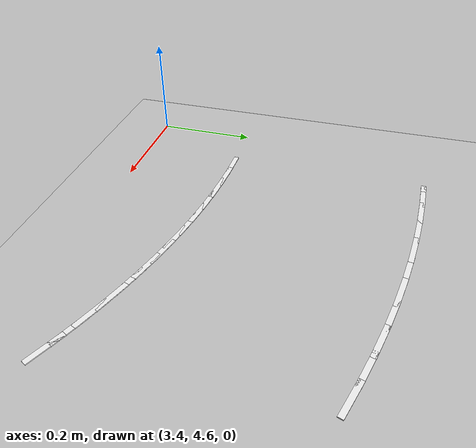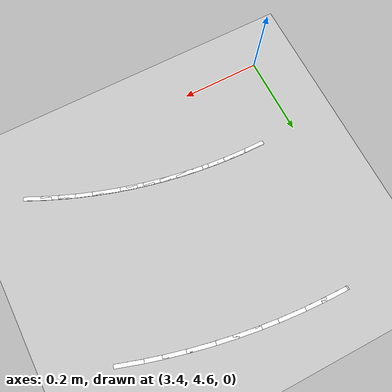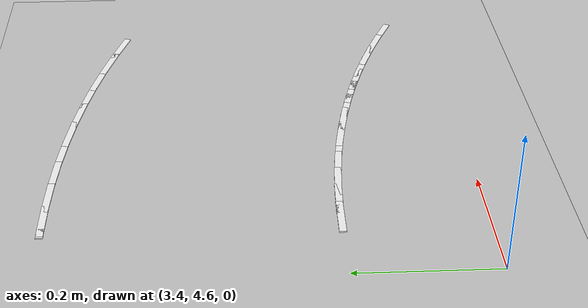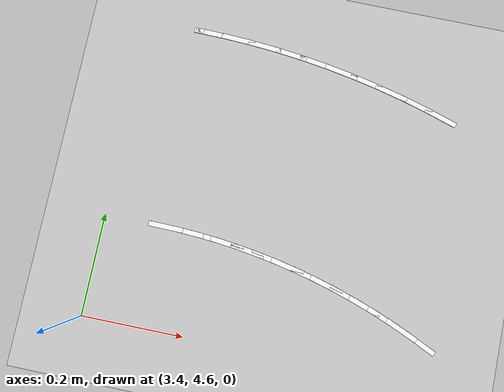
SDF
<sdf version="1.7">
 <world name="default">
  <model name="ground_plane">
   <static>1</static>
   <link name="link">
    <collision name="collision">
     <geometry><plane><normal>0 0 1</normal><size>100 100</size></plane></geometry>
     <surface>
      <contact><collide_bitmask>65535</collide_bitmask></contact>
      <friction><ode><mu>100</mu><mu2>50</mu2></ode></friction>
     </surface>
    </collision>
    <visual name="visual">
     <cast_shadows>0</cast_shadows>
     <geometry><plane><normal>0 0 1</normal><size>100 100</size></plane></geometry>
     <material>
      <script><uri>file://media/materials/scripts/gazebo.material</uri><name>Gazebo/Grey</name></script>
     </material>
    </visual>
   </link>
  </model>
  <model name="lane_line_left_185">
   <static>1</static>
   <link name="link">
    <pose>0 0 -0.004 0 -0 0</pose>
    <visual name="visual">
     <geometry><box><size>0.0681 0.01 0.01</size></box></geometry>
     <material><ambient>1 1 1 1</ambient><diffuse>1 1 1 1</diffuse></material>
    </visual>
    <collision name="collision"><geometry><box><size>0.0681 0.01 0.01</size></box></geometry></collision>
   </link>
   <pose>4.04512 4.67997 0 0 -0 2.70882</pose>
  </model>
  <model name="lane_line_left_186">
   <static>1</static>
   <link name="link">
    <pose>0 0 -0.004 0 -0 0</pose>
    <visual name="visual">
     <geometry><box><size>0.0681 0.01 0.01</size></box></geometry>
     <material><ambient>1 1 1 1</ambient><diffuse>1 1 1 1</diffuse></material>
    </visual>
    <collision name="collision"><geometry><box><size>0.0681 0.01 0.01</size></box></geometry></collision>
   </link>
   <pose>4.00702 4.69684 0 0 -0 2.74088</pose>
  </model>
  <model name="lane_line_left_187">
   <static>1</static>
   <link name="link">
    <pose>0 0 -0.004 0 -0 0</pose>
    <visual name="visual">
     <geometry><box><size>0.0681 0.01 0.01</size></box></geometry>
     <material><ambient>1 1 1 1</ambient><diffuse>1 1 1 1</diffuse></material>
    </visual>
    <collision name="collision"><geometry><box><size>0.0681 0.01 0.01</size></box></geometry></collision>
   </link>
   <pose>3.9684 4.71248 0 0 -0 2.77294</pose>
  </model>
  <model name="lane_line_left_188">
   <static>1</static>
   <link name="link">
    <pose>0 0 -0.004 0 -0 0</pose>
    <visual name="visual">
     <geometry><box><size>0.0681 0.01 0.01</size></box></geometry>
     <material><ambient>1 1 1 1</ambient><diffuse>1 1 1 1</diffuse></material>
    </visual>
    <collision name="collision"><geometry><box><size>0.0681 0.01 0.01</size></box></geometry></collision>
   </link>
   <pose>3.9293 4.72687 0 0 -0 2.80499</pose>
  </model>
  <model name="lane_line_left_189">
   <static>1</static>
   <link name="link">
    <pose>0 0 -0.004 0 -0 0</pose>
    <visual name="visual">
     <geometry><box><size>0.0681 0.01 0.01</size></box></geometry>
     <material><ambient>1 1 1 1</ambient><diffuse>1 1 1 1</diffuse></material>
    </visual>
    <collision name="collision"><geometry><box><size>0.0681 0.01 0.01</size></box></geometry></collision>
   </link>
   <pose>3.88976 4.74 0 0 -0 2.83705</pose>
  </model>
  <model name="lane_line_right_189">
   <static>1</static>
   <link name="link">
    <pose>0 0 -0.004 0 -0 0</pose>
    <visual name="visual">
     <geometry><box><size>0.0681 0.01 0.01</size></box></geometry>
     <material><ambient>1 1 1 1</ambient><diffuse>1 1 1 1</diffuse></material>
    </visual>
    <collision name="collision"><geometry><box><size>0.0681 0.01 0.01</size></box></geometry></collision>
   </link>
   <pose>4.0097 5.12159 0 0 -0 2.83705</pose>
  </model>
  <model name="lane_line_left_190">
   <static>1</static>
   <link name="link">
    <pose>0 0 -0.004 0 -0 0</pose>
    <visual name="visual">
     <geometry><box><size>0.0681 0.01 0.01</size></box></geometry>
     <material><ambient>1 1 1 1</ambient><diffuse>1 1 1 1</diffuse></material>
    </visual>
    <collision name="collision"><geometry><box><size>0.0681 0.01 0.01</size></box></geometry></collision>
   </link>
   <pose>3.84981 4.75185 0 0 -0 2.86911</pose>
  </model>
  <model name="lane_line_right_190">
   <static>1</static>
   <link name="link">
    <pose>0 0 -0.004 0 -0 0</pose>
    <visual name="visual">
     <geometry><box><size>0.0681 0.01 0.01</size></box></geometry>
     <material><ambient>1 1 1 1</ambient><diffuse>1 1 1 1</diffuse></material>
    </visual>
    <collision name="collision"><geometry><box><size>0.0681 0.01 0.01</size></box></geometry></collision>
   </link>
   <pose>3.95746 5.13709 0 0 -0 2.86911</pose>
  </model>
  <model name="lane_line_left_191">
   <static>1</static>
   <link name="link">
    <pose>0 0 -0.004 0 -0 0</pose>
    <visual name="visual">
     <geometry><box><size>0.0681 0.01 0.01</size></box></geometry>
     <material><ambient>1 1 1 1</ambient><diffuse>1 1 1 1</diffuse></material>
    </visual>
    <collision name="collision"><geometry><box><size>0.0681 0.01 0.01</size></box></geometry></collision>
   </link>
   <pose>3.80951 4.76242 0 0 -0 2.90116</pose>
  </model>
  <model name="lane_line_right_191">
   <static>1</static>
   <link name="link">
    <pose>0 0 -0.004 0 -0 0</pose>
    <visual name="visual">
     <geometry><box><size>0.0681 0.01 0.01</size></box></geometry>
     <material><ambient>1 1 1 1</ambient><diffuse>1 1 1 1</diffuse></material>
    </visual>
    <collision name="collision"><geometry><box><size>0.0681 0.01 0.01</size></box></geometry></collision>
   </link>
   <pose>3.90476 5.15091 0 0 -0 2.90116</pose>
  </model>
  <model name="lane_line_left_192">
   <static>1</static>
   <link name="link">
    <pose>0 0 -0.004 0 -0 0</pose>
    <visual name="visual">
     <geometry><box><size>0.0681 0.01 0.01</size></box></geometry>
     <material><ambient>1 1 1 1</ambient><diffuse>1 1 1 1</diffuse></material>
    </visual>
    <collision name="collision"><geometry><box><size>0.0681 0.01 0.01</size></box></geometry></collision>
   </link>
   <pose>3.76889 4.77169 0 0 -0 2.93322</pose>
  </model>
  <model name="lane_line_right_192">
   <static>1</static>
   <link name="link">
    <pose>0 0 -0.004 0 -0 0</pose>
    <visual name="visual">
     <geometry><box><size>0.0681 0.01 0.01</size></box></geometry>
     <material><ambient>1 1 1 1</ambient><diffuse>1 1 1 1</diffuse></material>
    </visual>
    <collision name="collision"><geometry><box><size>0.0681 0.01 0.01</size></box></geometry></collision>
   </link>
   <pose>3.85163 5.16304 0 0 -0 2.93322</pose>
  </model>
  <model name="lane_line_left_193">
   <static>1</static>
   <link name="link">
    <pose>0 0 -0.004 0 -0 0</pose>
    <visual name="visual">
     <geometry><box><size>0.0681 0.01 0.01</size></box></geometry>
     <material><ambient>1 1 1 1</ambient><diffuse>1 1 1 1</diffuse></material>
    </visual>
    <collision name="collision"><geometry><box><size>0.0681 0.01 0.01</size></box></geometry></collision>
   </link>
   <pose>3.72799 4.77966 0 0 -0 2.96528</pose>
  </model>
  <model name="lane_line_right_193">
   <static>1</static>
   <link name="link">
    <pose>0 0 -0.004 0 -0 0</pose>
    <visual name="visual">
     <geometry><box><size>0.0681 0.01 0.01</size></box></geometry>
     <material><ambient>1 1 1 1</ambient><diffuse>1 1 1 1</diffuse></material>
    </visual>
    <collision name="collision"><geometry><box><size>0.0681 0.01 0.01</size></box></geometry></collision>
   </link>
   <pose>3.79815 5.17346 0 0 -0 2.96528</pose>
  </model>
  <model name="lane_line_left_194">
   <static>1</static>
   <link name="link">
    <pose>0 0 -0.004 0 -0 0</pose>
    <visual name="visual">
     <geometry><box><size>0.0681 0.01 0.01</size></box></geometry>
     <material><ambient>1 1 1 1</ambient><diffuse>1 1 1 1</diffuse></material>
    </visual>
    <collision name="collision"><geometry><box><size>0.0681 0.01 0.01</size></box></geometry></collision>
   </link>
   <pose>3.68686 4.78631 0 0 -0 2.99734</pose>
  </model>
  <model name="lane_line_right_194">
   <static>1</static>
   <link name="link">
    <pose>0 0 -0.004 0 -0 0</pose>
    <visual name="visual">
     <geometry><box><size>0.0681 0.01 0.01</size></box></geometry>
     <material><ambient>1 1 1 1</ambient><diffuse>1 1 1 1</diffuse></material>
    </visual>
    <collision name="collision"><geometry><box><size>0.0681 0.01 0.01</size></box></geometry></collision>
   </link>
   <pose>3.74436 5.18215 0 0 -0 2.99734</pose>
  </model>
  <model name="lane_line_left_195">
   <static>1</static>
   <link name="link">
    <pose>0 0 -0.004 0 -0 0</pose>
    <visual name="visual">
     <geometry><box><size>0.0681 0.01 0.01</size></box></geometry>
     <material><ambient>1 1 1 1</ambient><diffuse>1 1 1 1</diffuse></material>
    </visual>
    <collision name="collision"><geometry><box><size>0.0681 0.01 0.01</size></box></geometry></collision>
   </link>
   <pose>3.64553 4.79163 0 0 -0 3.02939</pose>
  </model>
  <model name="lane_line_right_195">
   <static>1</static>
   <link name="link">
    <pose>0 0 -0.004 0 -0 0</pose>
    <visual name="visual">
     <geometry><box><size>0.0681 0.01 0.01</size></box></geometry>
     <material><ambient>1 1 1 1</ambient><diffuse>1 1 1 1</diffuse></material>
    </visual>
    <collision name="collision"><geometry><box><size>0.0681 0.01 0.01</size></box></geometry></collision>
   </link>
   <pose>3.69032 5.18912 0 0 -0 3.02939</pose>
  </model>
  <model name="lane_line_left_196">
   <static>1</static>
   <link name="link">
    <pose>0 0 -0.004 0 -0 0</pose>
    <visual name="visual">
     <geometry><box><size>0.0681 0.01 0.01</size></box></geometry>
     <material><ambient>1 1 1 1</ambient><diffuse>1 1 1 1</diffuse></material>
    </visual>
    <collision name="collision"><geometry><box><size>0.0681 0.01 0.01</size></box></geometry></collision>
   </link>
   <pose>3.60406 4.79564 0 0 -0 3.06145</pose>
  </model>
  <model name="lane_line_right_196">
   <static>1</static>
   <link name="link">
    <pose>0 0 -0.004 0 -0 0</pose>
    <visual name="visual">
     <geometry><box><size>0.0681 0.01 0.01</size></box></geometry>
     <material><ambient>1 1 1 1</ambient><diffuse>1 1 1 1</diffuse></material>
    </visual>
    <collision name="collision"><geometry><box><size>0.0681 0.01 0.01</size></box></geometry></collision>
   </link>
   <pose>3.63608 5.19435 0 0 -0 3.06145</pose>
  </model>
  <model name="lane_line_left_197">
   <static>1</static>
   <link name="link">
    <pose>0 0 -0.004 0 -0 0</pose>
    <visual name="visual">
     <geometry><box><size>0.0681 0.01 0.01</size></box></geometry>
     <material><ambient>1 1 1 1</ambient><diffuse>1 1 1 1</diffuse></material>
    </visual>
    <collision name="collision"><geometry><box><size>0.0681 0.01 0.01</size></box></geometry></collision>
   </link>
   <pose>3.56248 4.7983 0 0 -0 3.09351</pose>
  </model>
  <model name="lane_line_right_197">
   <static>1</static>
   <link name="link">
    <pose>0 0 -0.004 0 -0 0</pose>
    <visual name="visual">
     <geometry><box><size>0.0681 0.01 0.01</size></box></geometry>
     <material><ambient>1 1 1 1</ambient><diffuse>1 1 1 1</diffuse></material>
    </visual>
    <collision name="collision"><geometry><box><size>0.0681 0.01 0.01</size></box></geometry></collision>
   </link>
   <pose>3.5817 5.19784 0 0 -0 3.09351</pose>
  </model>
  <model name="lane_line_left_198">
   <static>1</static>
   <link name="link">
    <pose>0 0 -0.004 0 -0 0</pose>
    <visual name="visual">
     <geometry><box><size>0.0681 0.01 0.01</size></box></geometry>
     <material><ambient>1 1 1 1</ambient><diffuse>1 1 1 1</diffuse></material>
    </visual>
    <collision name="collision"><geometry><box><size>0.0681 0.01 0.01</size></box></geometry></collision>
   </link>
   <pose>3.52083 4.79964 0 0 -0 3.12556</pose>
  </model>
  <model name="lane_line_right_198">
   <static>1</static>
   <link name="link">
    <pose>0 0 -0.004 0 -0 0</pose>
    <visual name="visual">
     <geometry><box><size>0.0681 0.01 0.01</size></box></geometry>
     <material><ambient>1 1 1 1</ambient><diffuse>1 1 1 1</diffuse></material>
    </visual>
    <collision name="collision"><geometry><box><size>0.0681 0.01 0.01</size></box></geometry></collision>
   </link>
   <pose>3.52724 5.19959 0 0 -0 3.12556</pose>
  </model>
  <model name="lane_line_left_199">
   <static>1</static>
   <link name="link">
    <pose>0 0 -0.004 0 -0 0</pose>
    <visual name="visual">
     <geometry><box><size>0.02 0.01 0.01</size></box></geometry>
     <material><ambient>1 1 1 1</ambient><diffuse>1 1 1 1</diffuse></material>
    </visual>
    <collision name="collision"><geometry><box><size>0.02 0.01 0.01</size></box></geometry></collision>
   </link>
   <pose>3.5 5.2 0 0 -0 0</pose>
  </model>
 </world>
</sdf>
